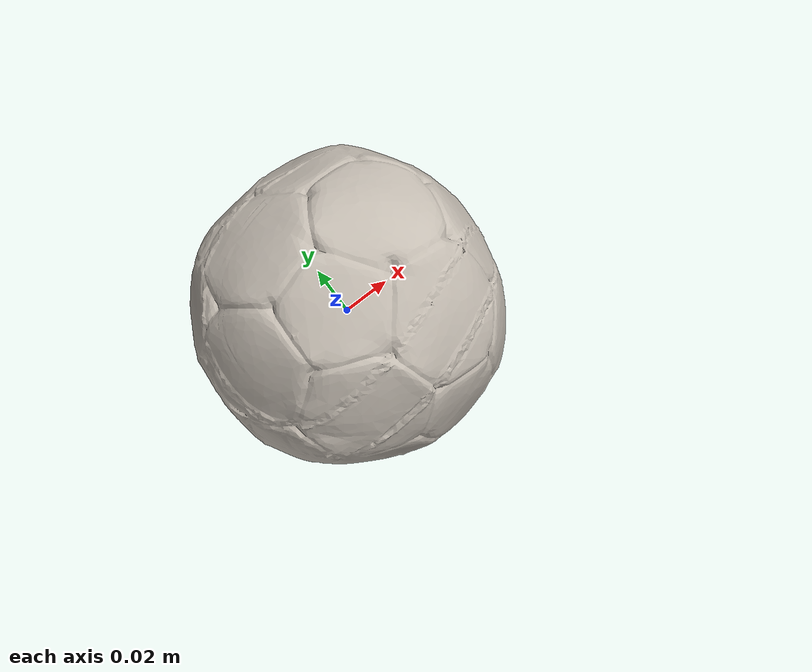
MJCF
<mujoco model="mini_soccer_ball">
  <compiler angle="radian" />

  <asset>
    <mesh name="mini_soccer_ball_visual_mesh" file="mini_soccer_ball/textured.obj" />
    <mesh name="mini_soccer_ball_collision_mesh_0" file="mini_soccer_ball/textured_coacd_0.stl" />
    <texture name="mini_soccer_ball_texture" type="2d" file="mini_soccer_ball/texture_map.png" />
    <material name="mini_soccer_ball_material" texture="mini_soccer_ball_texture" />
  </asset>

  <worldbody>
    <body name="mini_soccer_ball" pos="0 0 0" euler="0 0 0">
      <freejoint name="mini_soccer_ball_joint" />
      <geom name="mini_soccer_ball_visual_geom" type="mesh" mesh="mini_soccer_ball_visual_mesh" material="mini_soccer_ball_material" pos="-0.0 -0.0 0.0" euler="0 0 0" contype="0" conaffinity="0" group="0" />
      <geom name="mini_soccer_ball_collision_geom_0" type="mesh" mesh="mini_soccer_ball_collision_mesh_0" pos="-0.0 -0.0 0.0" euler="0 0 0" contype="1" conaffinity="1" group="3" />
      <inertial pos="0 0 0" euler="0 0 0" mass="0.123" diaginertia="0.001 0.001 0.001" />
    </body>
  </worldbody>
</mujoco>
